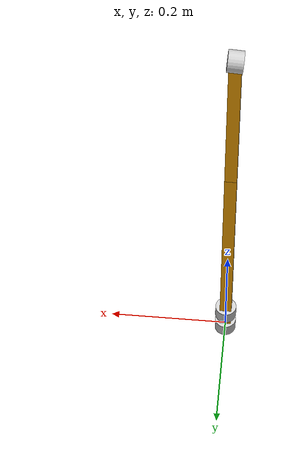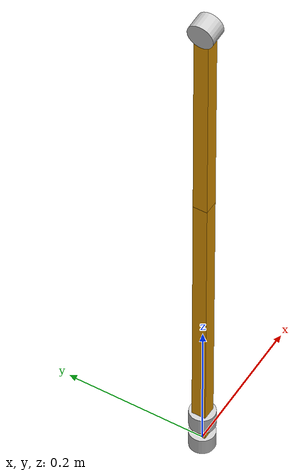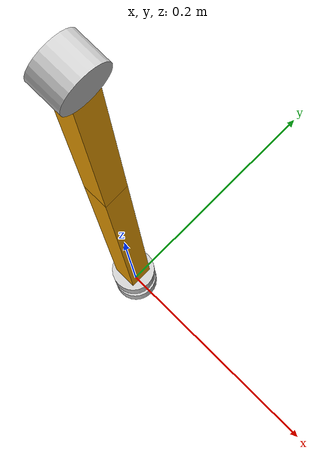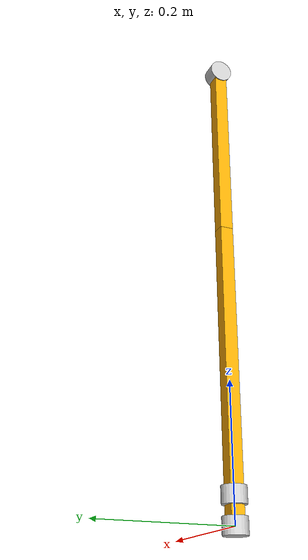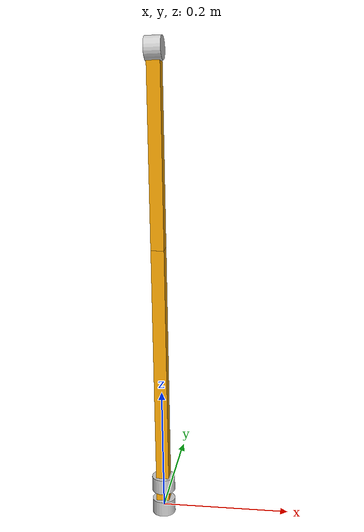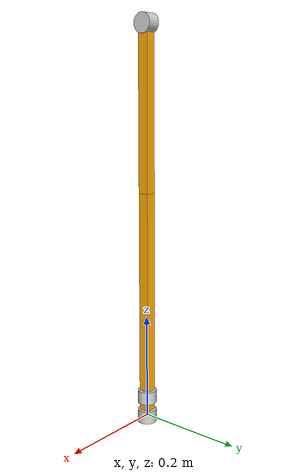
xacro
<?xml version="1.0"?>
<robot name="arm" xmlns:xacro="http://www.ros.org/wiki/xacro">

  <xacro:property name="PI" value="3"/>

  <!-- Joints Control in Gazebo -->
  <gazebo>
    <plugin name="gazebo_ros_control" filename="libgazebo_ros_control.so">
	<robotNamespace>/arm</robotNamespace>
	<robotSimType>gazebo_ros_control/DefaultRobotHWSim</robotSimType>
    </plugin>
  </gazebo>

  <!-- Geometrical properties -->
  <xacro:property name="link_side" value="0.02"/>
  <xacro:property name="joint_radius" value="0.018"/>
  <xacro:property name="joint_length" value="0.025"/>
  <xacro:property name="foot_length" value="0.04"/>
  <xacro:property name="leg_length" value="0.40"/>
  <xacro:property name="arm_length" value="0.30"/>
  <xacro:property name="M_PI" value="3.1415926535897931" />

  <!-- Materials -->
  <material name="orange">
    <color rgba="1.00 0.67 0.02 1.00"/>
  </material>

  <material name="gray">
    <color rgba="0.80 0.80 0.80 1.00"/>
  </material>

  <!-- Generates a box visual/collision/inertial -->
  <xacro:macro name="prism_vci" params="side length mass:=1 *origin">

    <xacro:macro name="prism_geometry">
      <xacro:insert_block name="origin"/>
      <geometry>
        <box size="${side} ${side} ${length}"/>
      </geometry>
    </xacro:macro>

    <visual>
      <xacro:prism_geometry/>
      <material name="orange"/>
    </visual>

    <collision>
      <xacro:prism_geometry/>
    </collision>

    <inertial>
      <xacro:insert_block name="origin"/>
      <mass value="${mass}"/>
      <inertia ixx="${(mass/12)*(side*side+length*length)}"
               iyy="${(mass/12)*(side*side+length*length)}"
               izz="${(mass/6)*(side*side)}"
               ixy="0" ixz="0" iyz="0"/>
    </inertial>

  </xacro:macro>

  <!-- Generates a cylinder visual/collision -->
  <xacro:macro name="cylinder_vc" params="radius length *origin">

    <xacro:macro name="cylinder_geometry">
      <xacro:insert_block name="origin"/>
      <geometry>
        <cylinder length="${length}" radius="${radius}"/>
      </geometry>
    </xacro:macro>

    <visual>
      <xacro:cylinder_geometry/>
      <material name="gray"/>
    </visual>

    <collision>
      <xacro:cylinder_geometry/>
    </collision>

  </xacro:macro>

  <!-- Generates child joint of parent -->
  <xacro:macro name="arm_joint" params="child parent dist:=0 axis">

    <joint name="${parent}_${child}_joint" type="revolute">
      <parent link="${parent}"/>
      <child link="${child}"/>
      <origin xyz="0 0 ${dist}" rpy="0 0 0"/>
      <axis xyz="${axis}"/>
      <limit effort="40.0"
             velocity="1.0"
             lower="${-PI}"
             upper="${PI}"/>
    </joint>

    <!-- Required for ROS control -->
    <transmission name="${parent}_${child}_transmission">
      <type>transmission_interface/SimpleTransmission</type>
      <joint name="${parent}_${child}_joint">
        <hardwareInterface>hardware_interface/EffortJointInterface</hardwareInterface>
      </joint>
      <actuator name="${parent}_${child}_actuator">
         <hardwareInterface>EffortJointInterface</hardwareInterface>
         <mechanicalReduction>1</mechanicalReduction>
      </actuator>
    </transmission>

    <link name="${parent}">

      <xacro:prism_vci length="${dist}" side="${link_side}">
        <origin xyz="0 0 ${dist/2}" rpy="0 0 0"/>
      </xacro:prism_vci>

      <xacro:cylinder_vc radius="${joint_radius}" length="${joint_length}">

        <xacro:if value="${axis=='0 0 1'}">
          <origin xyz="0 0 ${dist}" rpy="0 0 0"/>
        </xacro:if>

        <xacro:if value="${axis=='1 0 0'}">
          <origin xyz="0 0 ${dist}" rpy="0 ${PI/2} 0"/>
        </xacro:if>

        <xacro:if value="${axis=='0 1 0'}">
          <origin xyz="0 0 ${dist}" rpy="${PI/2} 0 0"/>
        </xacro:if>

      </xacro:cylinder_vc>

    </link>

    <gazebo reference="${parent}">
      <material>Gazebo/Orange</material>
    </gazebo>

  </xacro:macro>

  <!-- Camera -->
  <xacro:macro name="my_camera_link" params="parent">

    <link name="camera_link">

      <collision>
        <origin xyz="-2.0 0 0" rpy="0 0 0" />
        <geometry>
          <box size="0.1 0.1 0.1"/>
        </geometry>
      </collision>

      <visual>
        <origin xyz="-2 0 0" rpy="0 0 0" />
        <geometry>
          <box size="0.1 0.1 0.1"/>
        </geometry>
      </visual>

      <inertial>
        <mass value="1e-6" />
        <origin xyz="-2 0 0" rpy="0 0 0" />
        <inertia ixx="1e-6" ixy="0" ixz="0" iyy="1e-6" iyz="0" izz="1e-6" />
      </inertial>

    </link>

    <joint name="camera_joint" type="fixed">
        <parent link="${parent}"/>
        <child link="camera_link"/>
        <origin rpy="0 0 0" xyz="-2 0.0 0.0"/>
        <axis xyz="1 0 0" />
    </joint>

    <gazebo reference="camera_link">
      <sensor type="camera" name="camera1">
        <update_rate>30.0</update_rate>
        <camera name="head">
	  <horizontal_fov>1.3962634</horizontal_fov>
	  <image>
	    <width>320</width>
	    <height>240</height>
	    <format>R8G8B8</format>
	  </image>
	  <clip>
	    <near>0.02</near>
	    <far>300</far>
	  </clip>
        </camera>

        <plugin name="camera_controller" filename="libgazebo_ros_camera.so">
          <alwaysOn>true</alwaysOn>
          <updateRate>0.0</updateRate>
          <cameraName>arm_sensor/camera</cameraName>
          <imageTopicName>image_raw</imageTopicName>
          <cameraInfoTopicName>camera_info</cameraInfoTopicName>
          <frameName>camera_link</frameName>
          <hackBaseline>0.07</hackBaseline>
          <distortionK1>0.0</distortionK1>
          <distortionK2>0.0</distortionK2>
          <distortionK3>0.0</distortionK3>
          <distortionT1>0.0</distortionT1>
          <distortionT2>0.0</distortionT2>
        </plugin>
      </sensor>
    </gazebo>
  </xacro:macro>

  <!-- World frame (for Gazebo) -->
  <link name="world" />

  <!-- Arm fixed to world frame  -->
  <joint name="world_foot_joint" type="fixed">
    <parent link="world"/>
    <child link="foot"/>
    <origin rpy="0.0 0 0.0" xyz="0.0 0.0 0.0"/>
  </joint>

  <!-- Joints Chain -->
  <xacro:arm_joint parent="foot" child="leg" axis="1 0 0" dist="${foot_length}"/>
  <xacro:arm_joint parent="leg" child="arm" axis="1 0 0" dist="${leg_length}"/>

  <!-- End effector -->
    <link name="arm">

      <xacro:prism_vci length="${arm_length}" side="${link_side}">
        <origin xyz="0 0 ${arm_length/2}" rpy="0 0 0"/>
      </xacro:prism_vci>

      <xacro:cylinder_vc radius="${joint_radius}" length="${joint_length}">

          <origin xyz="0 0 ${arm_length}" rpy="0 ${PI/2} 0"/>

      </xacro:cylinder_vc>

    </link>

  <!-- Add Camera -->

  <gazebo reference="arm">
    <material>Gazebo/Orange</material>
  </gazebo>

</robot>
